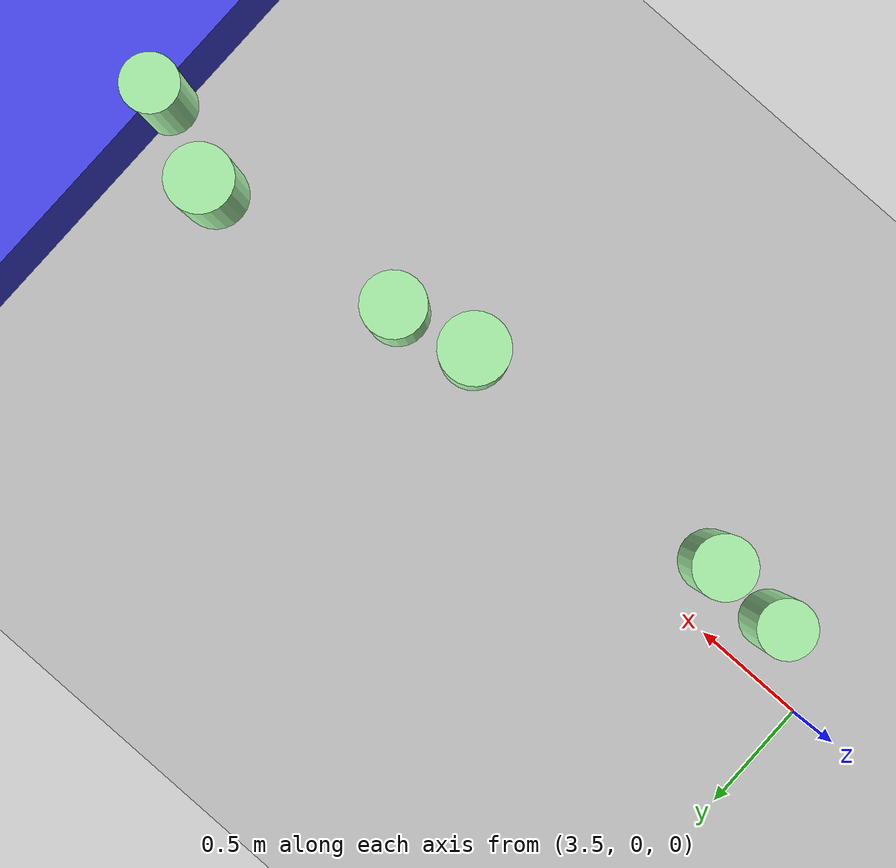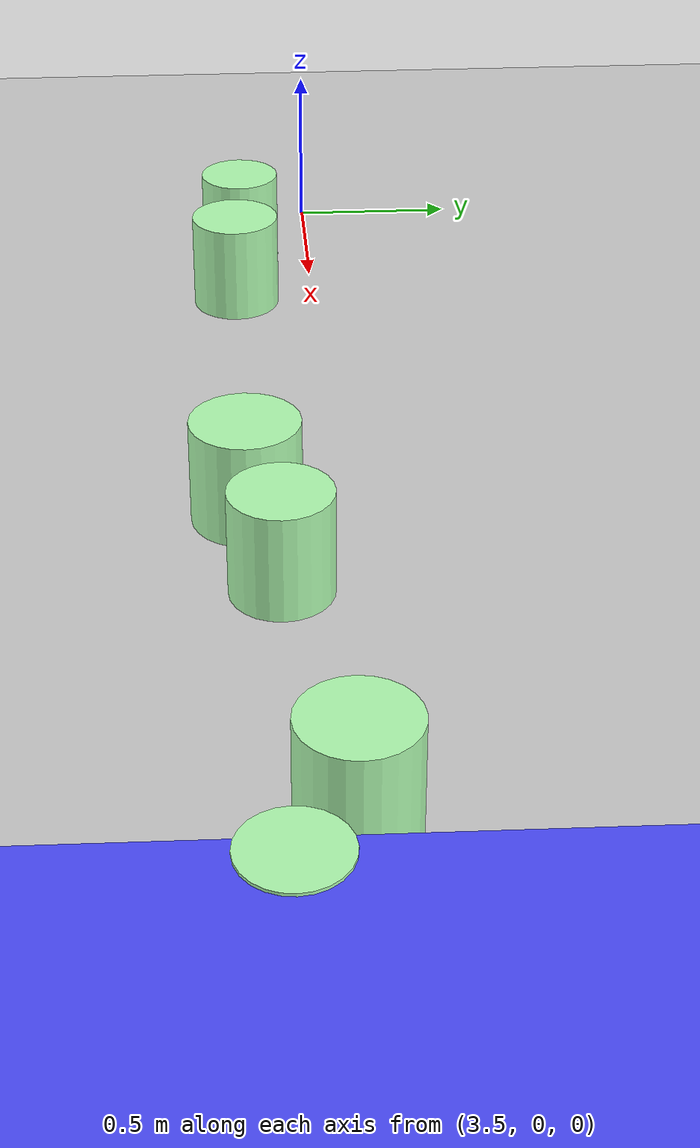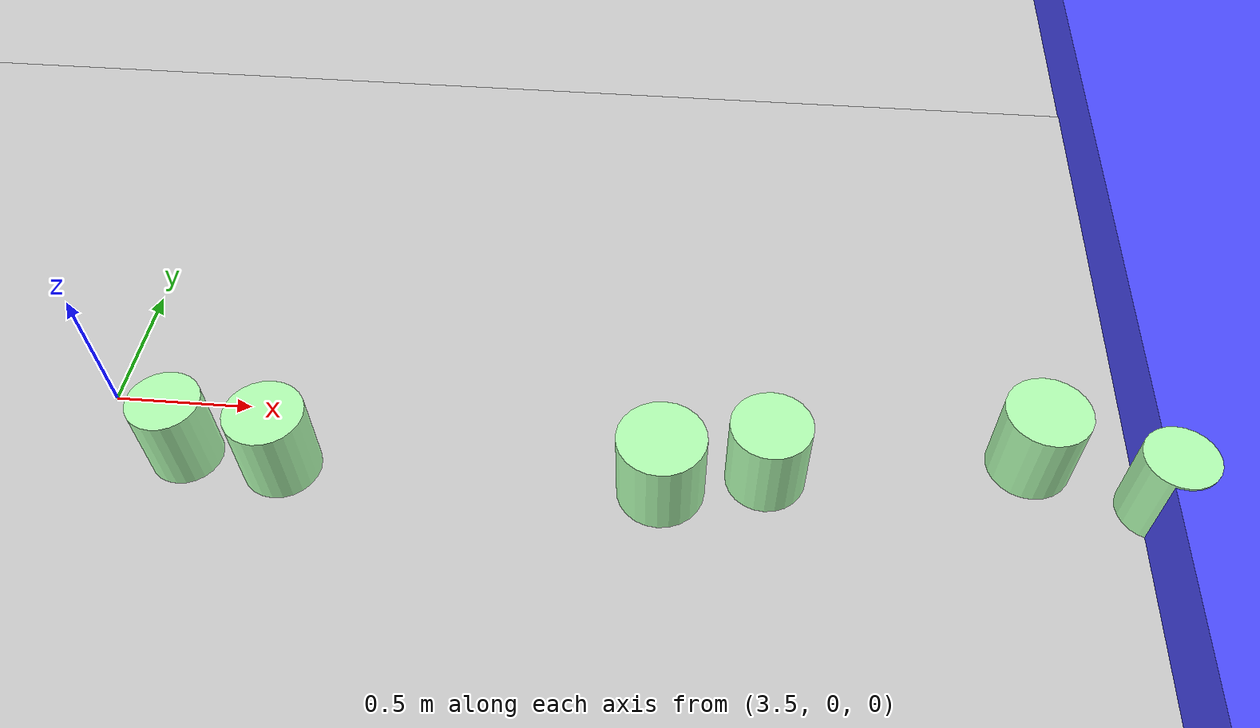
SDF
<sdf version="1.7">
 <world name="default">
  <model name="ground_plane">
   <static>1</static>
   <link name="link">
    <collision name="collision">
     <geometry><plane><normal>0 0 1</normal><size>100 100</size></plane></geometry>
     <surface><friction><ode><mu>100</mu><mu2>50</mu2></ode></friction></surface>
    </collision>
    <visual name="visual">
     <cast_shadows>0</cast_shadows>
     <geometry><plane><normal>0 0 1</normal><size>100 100</size></plane></geometry>
     <material>
      <script><uri>file://media/materials/scripts/gazebo.material</uri><name>Gazebo/Grey</name></script>
     </material>
    </visual>
   </link>
  </model>
  <model name="ban_400_80_30_clone_clone_clone">
   <link name="link">
    <inertial>
     <mass>1</mass>
     <inertia>
      <ixx>0.166667</ixx>
      <ixy>0</ixy>
      <ixz>0</ixz>
      <iyy>0.166667</iyy>
      <iyz>0</iyz>
      <izz>0.166667</izz>
     </inertia>
    </inertial>
    <visual name="visual">
     <geometry><box><size>11.703 1.83242 0.3</size></box></geometry>
     <material>
      <script><name>Gazebo/Grey</name><uri>file://media/materials/scripts/gazebo.material</uri></script>
      <shader type="pixel"><normal_map>__default__</normal_map></shader>
      <ambient>0.3 0.3 1 1</ambient>
      <diffuse>0.7 0.7 0.7 1</diffuse>
      <specular>0.01 0.01 0.01 1</specular>
      <emissive>0 0 0 1</emissive>
     </material>
    </visual>
    <collision name="collision">
     <geometry><box><size>11.703 1.83242 0.3</size></box></geometry>
     <surface>
      <friction>
       <ode><mu>1</mu><mu2>1</mu2><fdir1>0 0 0</fdir1><slip1>0</slip1><slip2>0</slip2></ode>
       <torsional>
        <coefficient>1</coefficient>
        <patch_radius>0</patch_radius>
        <surface_radius>0</surface_radius>
        <use_patch_radius>1</use_patch_radius>
        <ode><slip>0</slip></ode>
       </torsional>
      </friction>
      <bounce><restitution_coefficient>0</restitution_coefficient><threshold>1e+06</threshold></bounce>
      <contact>
       <collide_without_contact>0</collide_without_contact>
       <collide_without_contact_bitmask>1</collide_without_contact_bitmask>
       <collide_bitmask>1</collide_bitmask>
       <ode>
        <soft_cfm>0</soft_cfm>
        <soft_erp>0.2</soft_erp>
        <kp>1e+13</kp>
        <kd>1</kd>
        <max_vel>0.01</max_vel>
        <min_depth>0</min_depth>
       </ode>
       <bullet>
        <split_impulse>1</split_impulse>
        <split_impulse_penetration_threshold>-0.01</split_impulse_penetration_threshold>
        <soft_cfm>0</soft_cfm>
        <soft_erp>0.2</soft_erp>
        <kp>1e+13</kp>
        <kd>1</kd>
       </bullet>
      </contact>
     </surface>
    </collision>
   </link>
   <static>1</static>
   <pose>8.04186 -0.043434 0.139007 0 -0 1.55763</pose>
  </model>
  <model name="mhz_y_25_30_clone_13_clone_clone_9_clone_0">
   <link name="link">
    <inertial>
     <mass>1</mass>
     <inertia><ixx>0.145833</ixx><ixy>0</ixy><ixz>0</ixz><iyy>0.145833</iyy><iyz>0</iyz><izz>0.125</izz></inertia>
    </inertial>
    <visual name="visual">
     <geometry><cylinder><radius>0.125</radius><length>0.3</length></cylinder></geometry>
     <material>
      <script><name>Gazebo/Grey</name><uri>file://media/materials/scripts/gazebo.material</uri></script>
      <shader type="pixel"><normal_map>__default__</normal_map></shader>
      <ambient>0 1 0 0</ambient>
      <diffuse>0.7 1 0.7 1</diffuse>
      <specular>0.01 0.01 0.01 1</specular>
      <emissive>0 0 0 1</emissive>
     </material>
    </visual>
    <collision name="collision">
     <geometry><cylinder><radius>0.125</radius><length>0.3</length></cylinder></geometry>
     <surface>
      <friction>
       <ode><mu>1</mu><mu2>1</mu2><fdir1>0 0 0</fdir1><slip1>0</slip1><slip2>0</slip2></ode>
       <torsional>
        <coefficient>1</coefficient>
        <patch_radius>0</patch_radius>
        <surface_radius>0</surface_radius>
        <use_patch_radius>1</use_patch_radius>
        <ode><slip>0</slip></ode>
       </torsional>
      </friction>
      <bounce><restitution_coefficient>0</restitution_coefficient><threshold>1e+06</threshold></bounce>
      <contact>
       <collide_without_contact>0</collide_without_contact>
       <collide_without_contact_bitmask>1</collide_without_contact_bitmask>
       <collide_bitmask>1</collide_bitmask>
       <ode>
        <soft_cfm>0</soft_cfm>
        <soft_erp>0.2</soft_erp>
        <kp>1e+13</kp>
        <kd>1</kd>
        <max_vel>0.01</max_vel>
        <min_depth>0</min_depth>
       </ode>
       <bullet>
        <split_impulse>1</split_impulse>
        <split_impulse_penetration_threshold>-0.01</split_impulse_penetration_threshold>
        <soft_cfm>0</soft_cfm>
        <soft_erp>0.2</soft_erp>
        <kp>1e+13</kp>
        <kd>1</kd>
       </bullet>
      </contact>
     </surface>
    </collision>
   </link>
   <static>1</static>
   <pose>3.8358 -0.223314 0.14679 0 -0 0</pose>
  </model>
  <model name="mhz_y_25_30_clone_13_clone_clone_9_clone_0_clone">
   <link name="link">
    <inertial>
     <mass>1</mass>
     <inertia><ixx>0.145833</ixx><ixy>0</ixy><ixz>0</ixz><iyy>0.145833</iyy><iyz>0</iyz><izz>0.125</izz></inertia>
    </inertial>
    <visual name="visual">
     <geometry><cylinder><radius>0.135799</radius><length>0.3</length></cylinder></geometry>
     <material>
      <script><name>Gazebo/Grey</name><uri>file://media/materials/scripts/gazebo.material</uri></script>
      <shader type="pixel"><normal_map>__default__</normal_map></shader>
      <ambient>0 1 0 0</ambient>
      <diffuse>0.7 1 0.7 1</diffuse>
      <specular>0.01 0.01 0.01 1</specular>
      <emissive>0 0 0 1</emissive>
     </material>
    </visual>
    <collision name="collision">
     <geometry><cylinder><radius>0.135799</radius><length>0.3</length></cylinder></geometry>
     <surface>
      <friction>
       <ode><mu>1</mu><mu2>1</mu2><fdir1>0 0 0</fdir1><slip1>0</slip1><slip2>0</slip2></ode>
       <torsional>
        <coefficient>1</coefficient>
        <patch_radius>0</patch_radius>
        <surface_radius>0</surface_radius>
        <use_patch_radius>1</use_patch_radius>
        <ode><slip>0</slip></ode>
       </torsional>
      </friction>
      <bounce><restitution_coefficient>0</restitution_coefficient><threshold>1e+06</threshold></bounce>
      <contact>
       <collide_without_contact>0</collide_without_contact>
       <collide_without_contact_bitmask>1</collide_without_contact_bitmask>
       <collide_bitmask>1</collide_bitmask>
       <ode>
        <soft_cfm>0</soft_cfm>
        <soft_erp>0.2</soft_erp>
        <kp>1e+13</kp>
        <kd>1</kd>
        <max_vel>0.01</max_vel>
        <min_depth>0</min_depth>
       </ode>
       <bullet>
        <split_impulse>1</split_impulse>
        <split_impulse_penetration_threshold>-0.01</split_impulse_penetration_threshold>
        <soft_cfm>0</soft_cfm>
        <soft_erp>0.2</soft_erp>
        <kp>1e+13</kp>
        <kd>1</kd>
       </bullet>
      </contact>
     </surface>
    </collision>
   </link>
   <static>1</static>
   <pose>4.18166 -0.244411 0.14679 0 -0 0</pose>
  </model>
  <model name="mhz_y_25_30_clone_13_clone_clone_9_clone_0_clone_clone_0_clone_0_clone_clone_clone">
   <link name="link">
    <inertial>
     <mass>1</mass>
     <inertia><ixx>0.145833</ixx><ixy>0</ixy><ixz>0</ixz><iyy>0.145833</iyy><iyz>0</iyz><izz>0.125</izz></inertia>
    </inertial>
    <visual name="visual">
     <geometry><cylinder><radius>0.151445</radius><length>0.3</length></cylinder></geometry>
     <material>
      <script><name>Gazebo/Grey</name><uri>file://media/materials/scripts/gazebo.material</uri></script>
      <shader type="pixel"><normal_map>__default__</normal_map></shader>
      <ambient>0 1 0 0</ambient>
      <diffuse>0.7 1 0.7 1</diffuse>
      <specular>0.01 0.01 0.01 1</specular>
      <emissive>0 0 0 1</emissive>
     </material>
    </visual>
    <collision name="collision">
     <geometry><cylinder><radius>0.151445</radius><length>0.3</length></cylinder></geometry>
     <surface>
      <friction>
       <ode><mu>1</mu><mu2>1</mu2><fdir1>0 0 0</fdir1><slip1>0</slip1><slip2>0</slip2></ode>
       <torsional>
        <coefficient>1</coefficient>
        <patch_radius>0</patch_radius>
        <surface_radius>0</surface_radius>
        <use_patch_radius>1</use_patch_radius>
        <ode><slip>0</slip></ode>
       </torsional>
      </friction>
      <bounce><restitution_coefficient>0</restitution_coefficient><threshold>1e+06</threshold></bounce>
      <contact>
       <collide_without_contact>0</collide_without_contact>
       <collide_without_contact_bitmask>1</collide_without_contact_bitmask>
       <collide_bitmask>1</collide_bitmask>
       <ode>
        <soft_cfm>0</soft_cfm>
        <soft_erp>0.2</soft_erp>
        <kp>1e+13</kp>
        <kd>1</kd>
        <max_vel>0.01</max_vel>
        <min_depth>0</min_depth>
       </ode>
       <bullet>
        <split_impulse>1</split_impulse>
        <split_impulse_penetration_threshold>-0.01</split_impulse_penetration_threshold>
        <soft_cfm>0</soft_cfm>
        <soft_erp>0.2</soft_erp>
        <kp>1e+13</kp>
        <kd>1</kd>
       </bullet>
      </contact>
     </surface>
    </collision>
   </link>
   <static>1</static>
   <pose>5.49952 -0.239631 0.14679 0 -0 0</pose>
  </model>
  <model name="mhz_y_25_30_clone_13_clone_clone_9_clone_0_clone_clone_0_clone_0_clone_clone_clone_clone_clone">
   <link name="link">
    <inertial>
     <mass>1</mass>
     <inertia><ixx>0.145833</ixx><ixy>0</ixy><ixz>0</ixz><iyy>0.145833</iyy><iyz>0</iyz><izz>0.125</izz></inertia>
    </inertial>
    <visual name="visual">
     <geometry><cylinder><radius>0.139046</radius><length>0.3</length></cylinder></geometry>
     <material>
      <script><name>Gazebo/Grey</name><uri>file://media/materials/scripts/gazebo.material</uri></script>
      <shader type="pixel"><normal_map>__default__</normal_map></shader>
      <ambient>0 1 0 0</ambient>
      <diffuse>0.7 1 0.7 1</diffuse>
      <specular>0.01 0.01 0.01 1</specular>
      <emissive>0 0 0 1</emissive>
     </material>
    </visual>
    <collision name="collision">
     <geometry><cylinder><radius>0.139046</radius><length>0.3</length></cylinder></geometry>
     <surface>
      <friction>
       <ode><mu>1</mu><mu2>1</mu2><fdir1>0 0 0</fdir1><slip1>0</slip1><slip2>0</slip2></ode>
       <torsional>
        <coefficient>1</coefficient>
        <patch_radius>0</patch_radius>
        <surface_radius>0</surface_radius>
        <use_patch_radius>1</use_patch_radius>
        <ode><slip>0</slip></ode>
       </torsional>
      </friction>
      <bounce><restitution_coefficient>0</restitution_coefficient><threshold>1e+06</threshold></bounce>
      <contact>
       <collide_without_contact>0</collide_without_contact>
       <collide_without_contact_bitmask>1</collide_without_contact_bitmask>
       <collide_bitmask>1</collide_bitmask>
       <ode>
        <soft_cfm>0</soft_cfm>
        <soft_erp>0.2</soft_erp>
        <kp>1e+13</kp>
        <kd>1</kd>
        <max_vel>0.01</max_vel>
        <min_depth>0</min_depth>
       </ode>
       <bullet>
        <split_impulse>1</split_impulse>
        <split_impulse_penetration_threshold>-0.01</split_impulse_penetration_threshold>
        <soft_cfm>0</soft_cfm>
        <soft_erp>0.2</soft_erp>
        <kp>1e+13</kp>
        <kd>1</kd>
       </bullet>
      </contact>
     </surface>
    </collision>
   </link>
   <static>1</static>
   <pose>5.85595 -0.157693 0.14679 0 -0 0</pose>
  </model>
  <model name="mhz_y_25_30_clone_13_clone_clone_9_clone_0_clone_clone_0_clone_0_clone_clone_clone_clone_clone_clone_0_clone_1">
   <link name="link">
    <inertial>
     <mass>1</mass>
     <inertia><ixx>0.145833</ixx><ixy>0</ixy><ixz>0</ixz><iyy>0.145833</iyy><iyz>0</iyz><izz>0.125</izz></inertia>
    </inertial>
    <visual name="visual">
     <geometry><cylinder><radius>0.145539</radius><length>0.3</length></cylinder></geometry>
     <material>
      <script><name>Gazebo/Grey</name><uri>file://media/materials/scripts/gazebo.material</uri></script>
      <shader type="pixel"><normal_map>__default__</normal_map></shader>
      <ambient>0 1 0 0</ambient>
      <diffuse>0.7 1 0.7 1</diffuse>
      <specular>0.01 0.01 0.01 1</specular>
      <emissive>0 0 0 1</emissive>
     </material>
    </visual>
    <collision name="collision">
     <geometry><cylinder><radius>0.145539</radius><length>0.3</length></cylinder></geometry>
     <surface>
      <friction>
       <ode><mu>1</mu><mu2>1</mu2><fdir1>0 0 0</fdir1><slip1>0</slip1><slip2>0</slip2></ode>
       <torsional>
        <coefficient>1</coefficient>
        <patch_radius>0</patch_radius>
        <surface_radius>0</surface_radius>
        <use_patch_radius>1</use_patch_radius>
        <ode><slip>0</slip></ode>
       </torsional>
      </friction>
      <bounce><restitution_coefficient>0</restitution_coefficient><threshold>1e+06</threshold></bounce>
      <contact>
       <collide_without_contact>0</collide_without_contact>
       <collide_without_contact_bitmask>1</collide_without_contact_bitmask>
       <collide_bitmask>1</collide_bitmask>
       <ode>
        <soft_cfm>0</soft_cfm>
        <soft_erp>0.2</soft_erp>
        <kp>1e+13</kp>
        <kd>1</kd>
        <max_vel>0.01</max_vel>
        <min_depth>0</min_depth>
       </ode>
       <bullet>
        <split_impulse>1</split_impulse>
        <split_impulse_penetration_threshold>-0.01</split_impulse_penetration_threshold>
        <soft_cfm>0</soft_cfm>
        <soft_erp>0.2</soft_erp>
        <kp>1e+13</kp>
        <kd>1</kd>
       </bullet>
      </contact>
     </surface>
    </collision>
   </link>
   <static>1</static>
   <pose>6.76779 -0.025178 0.14679 0 -0 0</pose>
  </model>
  <model name="mhz_y_25_30_clone_13_clone_clone_9_clone_0_clone_clone_0_clone_0_clone_clone_clone_clone_clone_clone_0_clone_2_clone">
   <link name="link">
    <inertial>
     <mass>1</mass>
     <inertia><ixx>0.145833</ixx><ixy>0</ixy><ixz>0</ixz><iyy>0.145833</iyy><iyz>0</iyz><izz>0.125</izz></inertia>
    </inertial>
    <visual name="visual">
     <geometry><cylinder><radius>0.125</radius><length>0.3</length></cylinder></geometry>
     <material>
      <script><name>Gazebo/Grey</name><uri>file://media/materials/scripts/gazebo.material</uri></script>
      <shader type="pixel"><normal_map>__default__</normal_map></shader>
      <ambient>0 1 0 0</ambient>
      <diffuse>0.7 1 0.7 1</diffuse>
      <specular>0.01 0.01 0.01 1</specular>
      <emissive>0 0 0 1</emissive>
     </material>
    </visual>
    <collision name="collision">
     <geometry><cylinder><radius>0.125</radius><length>0.3</length></cylinder></geometry>
     <surface>
      <friction>
       <ode><mu>1</mu><mu2>1</mu2><fdir1>0 0 0</fdir1><slip1>0</slip1><slip2>0</slip2></ode>
       <torsional>
        <coefficient>1</coefficient>
        <patch_radius>0</patch_radius>
        <surface_radius>0</surface_radius>
        <use_patch_radius>1</use_patch_radius>
        <ode><slip>0</slip></ode>
       </torsional>
      </friction>
      <bounce><restitution_coefficient>0</restitution_coefficient><threshold>1e+06</threshold></bounce>
      <contact>
       <collide_without_contact>0</collide_without_contact>
       <collide_without_contact_bitmask>1</collide_without_contact_bitmask>
       <collide_bitmask>1</collide_bitmask>
       <ode>
        <soft_cfm>0</soft_cfm>
        <soft_erp>0.2</soft_erp>
        <kp>1e+13</kp>
        <kd>1</kd>
        <max_vel>0.01</max_vel>
        <min_depth>0</min_depth>
       </ode>
       <bullet>
        <split_impulse>1</split_impulse>
        <split_impulse_penetration_threshold>-0.01</split_impulse_penetration_threshold>
        <soft_cfm>0</soft_cfm>
        <soft_erp>0.2</soft_erp>
        <kp>1e+13</kp>
        <kd>1</kd>
       </bullet>
      </contact>
     </surface>
    </collision>
   </link>
   <static>1</static>
   <pose>7.16575 -0.178466 0.14679 0 -0 0</pose>
  </model>
 </world>
</sdf>
